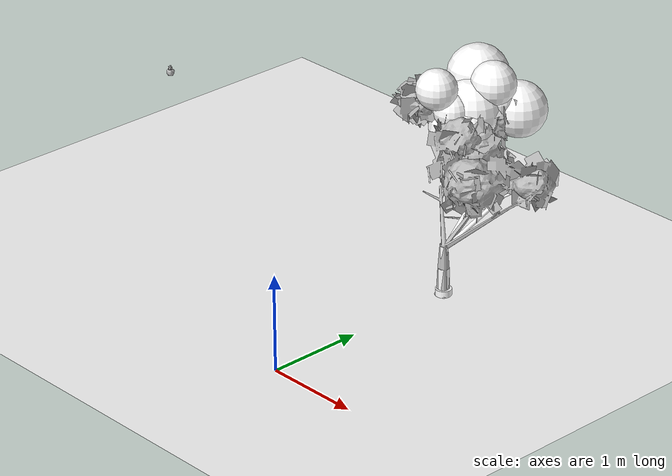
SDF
<sdf version="1.11">
 <world name="peach_orchard">
  <model name="ground">
   <static>true</static>
   <link name="link">
    <visual name="soil">
     <geometry><plane><normal>0 0 1</normal><size>32 22</size></plane></geometry>
     <material>
      <ambient>1 1 1 1</ambient>
      <diffuse>1 1 1 1</diffuse>
      <specular>0.1 0.1 0.1 1</specular>
      <pbr>
       <metal>
        <albedo_map>textures/soil_albedo.png</albedo_map>
        <normal_map type="tangent">textures/soil_normal.png</normal_map>
        <roughness>0.95</roughness>
        <metalness>0</metalness>
       </metal>
      </pbr>
     </material>
    </visual>
    <collision name="c_soil">
     <geometry><plane><normal>0 0 1</normal><size>32 22</size></plane></geometry>
    </collision>
   </link>
  </model>
  <model name="tree_r2_t4">
   <pose>0 2.2 0 0 0 0</pose>
   <static>true</static>
   <link name="link">
    <visual name="tree_mesh">
     <pose>0 0 0 0 0 -0.00886669</pose>
     <geometry>
      <mesh><uri>model://peach_sim/meshes/peach_tree_a.glb</uri><scale>0.955729 0.955729 0.955729</scale></mesh>
     </geometry>
    </visual>
    <visual name="trunk_0">
     <pose>0 0 0.147755 0 0 0</pose>
     <geometry><cylinder><radius>0.0571763</radius><length>0.29551</length></cylinder></geometry>
     <material>
      <ambient>1 1 1 1</ambient>
      <diffuse>1 1 1 1</diffuse>
      <specular>0.1 0.1 0.1 1</specular>
      <pbr>
       <metal>
        <albedo_map>textures/bark_albedo.png</albedo_map>
        <normal_map type="tangent">textures/bark_normal.png</normal_map>
        <roughness>0.9</roughness>
        <metalness>0</metalness>
       </metal>
      </pbr>
     </material>
    </visual>
    <collision name="c_trunk_0">
     <pose>0 0 0.147755 0 0 0</pose>
     <geometry><cylinder><radius>0.0571763</radius><length>0.29551</length></cylinder></geometry>
    </collision>
    <visual name="trunk_1">
     <pose>0 0 0.4164 0 0 0</pose>
     <geometry><cylinder><radius>0.0411669</radius><length>0.241781</length></cylinder></geometry>
     <material>
      <ambient>1 1 1 1</ambient>
      <diffuse>1 1 1 1</diffuse>
      <specular>0.1 0.1 0.1 1</specular>
      <pbr>
       <metal>
        <albedo_map>textures/bark_albedo.png</albedo_map>
        <normal_map type="tangent">textures/bark_normal.png</normal_map>
        <roughness>0.9</roughness>
        <metalness>0</metalness>
       </metal>
      </pbr>
     </material>
    </visual>
    <collision name="c_trunk_1">
     <pose>0 0 0.4164 0 0 0</pose>
     <geometry><cylinder><radius>0.0411669</radius><length>0.241781</length></cylinder></geometry>
    </collision>
    <visual name="root_flare">
     <pose>0 0 0.035 0 0 0</pose>
     <geometry><cylinder><radius>0.0829056</radius><length>0.07</length></cylinder></geometry>
     <material>
      <ambient>1 1 1 1</ambient>
      <diffuse>1 1 1 1</diffuse>
      <specular>0.1 0.1 0.1 1</specular>
      <pbr>
       <metal>
        <albedo_map>textures/bark_albedo.png</albedo_map>
        <normal_map type="tangent">textures/bark_normal.png</normal_map>
        <roughness>0.95</roughness>
        <metalness>0</metalness>
       </metal>
      </pbr>
     </material>
    </visual>
    <visual name="scaffold_0">
     <pose>-0.0409323 0.270379 0.696993 0 0.932957 1.72104</pose>
     <geometry><cylinder><radius>0.022</radius><length>0.680769</length></cylinder></geometry>
     <material>
      <ambient>1 1 1 1</ambient>
      <diffuse>1 1 1 1</diffuse>
      <specular>0.1 0.1 0.1 1</specular>
      <pbr>
       <metal>
        <albedo_map>textures/bark_albedo.png</albedo_map>
        <normal_map type="tangent">textures/bark_normal.png</normal_map>
        <roughness>0.9</roughness>
        <metalness>0</metalness>
       </metal>
      </pbr>
     </material>
    </visual>
    <collision name="c_scaffold_0">
     <pose>-0.0409323 0.270379 0.696993 0 0.932957 1.72104</pose>
     <geometry><cylinder><radius>0.022</radius><length>0.680769</length></cylinder></geometry>
    </collision>
    <visual name="branchlet_0_0">
     <pose>0.0842399 0.278687 0.810711 0 1.04285 -0.271813</pose>
     <geometry><cylinder><radius>0.012</radius><length>0.317258</length></cylinder></geometry>
     <material>
      <ambient>1 1 1 1</ambient>
      <diffuse>1 1 1 1</diffuse>
      <specular>0.1 0.1 0.1 1</specular>
      <pbr>
       <metal>
        <albedo_map>textures/bark_albedo.png</albedo_map>
        <normal_map type="tangent">textures/bark_normal.png</normal_map>
        <roughness>0.9</roughness>
        <metalness>0</metalness>
       </metal>
      </pbr>
     </material>
    </visual>
    <visual name="branchlet_0_1">
     <pose>-0.142574 0.465584 0.87202 0 0.923786 2.41494</pose>
     <geometry><cylinder><radius>0.012</radius><length>0.279364</length></cylinder></geometry>
     <material>
      <ambient>1 1 1 1</ambient>
      <diffuse>1 1 1 1</diffuse>
      <specular>0.1 0.1 0.1 1</specular>
      <pbr>
       <metal>
        <albedo_map>textures/bark_albedo.png</albedo_map>
        <normal_map type="tangent">textures/bark_normal.png</normal_map>
        <roughness>0.9</roughness>
        <metalness>0</metalness>
       </metal>
      </pbr>
     </material>
    </visual>
    <visual name="scaffold_1">
     <pose>0.0922781 0.353488 0.72758 0 1.00253 1.31545</pose>
     <geometry><cylinder><radius>0.022</radius><length>0.866915</length></cylinder></geometry>
     <material>
      <ambient>1 1 1 1</ambient>
      <diffuse>1 1 1 1</diffuse>
      <specular>0.1 0.1 0.1 1</specular>
      <pbr>
       <metal>
        <albedo_map>textures/bark_albedo.png</albedo_map>
        <normal_map type="tangent">textures/bark_normal.png</normal_map>
        <roughness>0.9</roughness>
        <metalness>0</metalness>
       </metal>
      </pbr>
     </material>
    </visual>
    <collision name="c_scaffold_1">
     <pose>0.0922781 0.353488 0.72758 0 1.00253 1.31545</pose>
     <geometry><cylinder><radius>0.022</radius><length>0.866915</length></cylinder></geometry>
    </collision>
    <visual name="branchlet_1_0">
     <pose>0.027938 0.584135 0.823255 0 1.51379 2.36306</pose>
     <geometry><cylinder><radius>0.012</radius><length>0.278696</length></cylinder></geometry>
     <material>
      <ambient>1 1 1 1</ambient>
      <diffuse>1 1 1 1</diffuse>
      <specular>0.1 0.1 0.1 1</specular>
      <pbr>
       <metal>
        <albedo_map>textures/bark_albedo.png</albedo_map>
        <normal_map type="tangent">textures/bark_normal.png</normal_map>
        <roughness>0.9</roughness>
        <metalness>0</metalness>
       </metal>
      </pbr>
     </material>
    </visual>
    <visual name="branchlet_1_1">
     <pose>0.262502 0.699688 0.978035 0 1.04397 0.672142</pose>
     <geometry><cylinder><radius>0.012</radius><length>0.298007</length></cylinder></geometry>
     <material>
      <ambient>1 1 1 1</ambient>
      <diffuse>1 1 1 1</diffuse>
      <specular>0.1 0.1 0.1 1</specular>
      <pbr>
       <metal>
        <albedo_map>textures/bark_albedo.png</albedo_map>
        <normal_map type="tangent">textures/bark_normal.png</normal_map>
        <roughness>0.9</roughness>
        <metalness>0</metalness>
       </metal>
      </pbr>
     </material>
    </visual>
    <visual name="canopy_0">
     <pose>-0.0873016 0.503652 1.64361 0 0 0</pose>
     <geometry><sphere><radius>0.19542</radius></sphere></geometry>
     <material>
      <ambient>1 1 1 1</ambient>
      <diffuse>1 1 1 1</diffuse>
      <specular>0.1 0.1 0.1 1</specular>
      <pbr>
       <metal>
        <albedo_map>textures/leaf_albedo.png</albedo_map>
        <normal_map type="tangent">textures/leaf_normal.png</normal_map>
        <roughness>0.85</roughness>
        <metalness>0</metalness>
       </metal>
      </pbr>
     </material>
    </visual>
    <collision name="c_canopy_0">
     <pose>-0.0873016 0.503652 1.64361 0 0 0</pose>
     <geometry><sphere><radius>0.19542</radius></sphere></geometry>
    </collision>
    <visual name="canopy_1">
     <pose>0.00261764 0.290627 1.63595 0 0 0</pose>
     <geometry><sphere><radius>0.252739</radius></sphere></geometry>
     <material>
      <ambient>1 1 1 1</ambient>
      <diffuse>1 1 1 1</diffuse>
      <specular>0.1 0.1 0.1 1</specular>
      <pbr>
       <metal>
        <albedo_map>textures/leaf_albedo.png</albedo_map>
        <normal_map type="tangent">textures/leaf_normal.png</normal_map>
        <roughness>0.85</roughness>
        <metalness>0</metalness>
       </metal>
      </pbr>
     </material>
    </visual>
    <collision name="c_canopy_1">
     <pose>0.00261764 0.290627 1.63595 0 0 0</pose>
     <geometry><sphere><radius>0.252739</radius></sphere></geometry>
    </collision>
    <visual name="canopy_2">
     <pose>-0.221107 0.0943453 2.09907 0 0 0</pose>
     <geometry><sphere><radius>0.206048</radius></sphere></geometry>
     <material>
      <ambient>1 1 1 1</ambient>
      <diffuse>1 1 1 1</diffuse>
      <specular>0.1 0.1 0.1 1</specular>
      <pbr>
       <metal>
        <albedo_map>textures/leaf_albedo.png</albedo_map>
        <normal_map type="tangent">textures/leaf_normal.png</normal_map>
        <roughness>0.85</roughness>
        <metalness>0</metalness>
       </metal>
      </pbr>
     </material>
    </visual>
    <collision name="c_canopy_2">
     <pose>-0.221107 0.0943453 2.09907 0 0 0</pose>
     <geometry><sphere><radius>0.206048</radius></sphere></geometry>
    </collision>
    <visual name="canopy_3">
     <pose>0.0495356 0.662553 1.91535 0 0 0</pose>
     <geometry><sphere><radius>0.183544</radius></sphere></geometry>
     <material>
      <ambient>1 1 1 1</ambient>
      <diffuse>1 1 1 1</diffuse>
      <specular>0.1 0.1 0.1 1</specular>
      <pbr>
       <metal>
        <albedo_map>textures/leaf_albedo.png</albedo_map>
        <normal_map type="tangent">textures/leaf_normal.png</normal_map>
        <roughness>0.85</roughness>
        <metalness>0</metalness>
       </metal>
      </pbr>
     </material>
    </visual>
    <visual name="canopy_4">
     <pose>-0.191836 0.361563 1.63113 0 0 0</pose>
     <geometry><sphere><radius>0.29218</radius></sphere></geometry>
     <material>
      <ambient>1 1 1 1</ambient>
      <diffuse>1 1 1 1</diffuse>
      <specular>0.1 0.1 0.1 1</specular>
      <pbr>
       <metal>
        <albedo_map>textures/leaf_albedo.png</albedo_map>
        <normal_map type="tangent">textures/leaf_normal.png</normal_map>
        <roughness>0.85</roughness>
        <metalness>0</metalness>
       </metal>
      </pbr>
     </material>
    </visual>
    <visual name="canopy_5">
     <pose>-0.133514 0.218368 1.86133 0 0 0</pose>
     <geometry><sphere><radius>0.182373</radius></sphere></geometry>
     <material>
      <ambient>1 1 1 1</ambient>
      <diffuse>1 1 1 1</diffuse>
      <specular>0.1 0.1 0.1 1</specular>
      <pbr>
       <metal>
        <albedo_map>textures/leaf_albedo.png</albedo_map>
        <normal_map type="tangent">textures/leaf_normal.png</normal_map>
        <roughness>0.85</roughness>
        <metalness>0</metalness>
       </metal>
      </pbr>
     </material>
    </visual>
    <visual name="canopy_6">
     <pose>0.0334277 0.608803 2.08443 0 0 0</pose>
     <geometry><sphere><radius>0.229128</radius></sphere></geometry>
     <material>
      <ambient>1 1 1 1</ambient>
      <diffuse>1 1 1 1</diffuse>
      <specular>0.1 0.1 0.1 1</specular>
      <pbr>
       <metal>
        <albedo_map>textures/leaf_albedo.png</albedo_map>
        <normal_map type="tangent">textures/leaf_normal.png</normal_map>
        <roughness>0.85</roughness>
        <metalness>0</metalness>
       </metal>
      </pbr>
     </material>
    </visual>
    <visual name="canopy_7">
     <pose>-0.103019 0.461283 1.83066 0 0 0</pose>
     <geometry><sphere><radius>0.299314</radius></sphere></geometry>
     <material>
      <ambient>1 1 1 1</ambient>
      <diffuse>1 1 1 1</diffuse>
      <specular>0.1 0.1 0.1 1</specular>
      <pbr>
       <metal>
        <albedo_map>textures/leaf_albedo.png</albedo_map>
        <normal_map type="tangent">textures/leaf_normal.png</normal_map>
        <roughness>0.85</roughness>
        <metalness>0</metalness>
       </metal>
      </pbr>
     </material>
    </visual>
    <visual name="canopy_8">
     <pose>-0.27747 0.712384 2.05028 0 0 0</pose>
     <geometry><sphere><radius>0.310525</radius></sphere></geometry>
     <material>
      <ambient>1 1 1 1</ambient>
      <diffuse>1 1 1 1</diffuse>
      <specular>0.1 0.1 0.1 1</specular>
      <pbr>
       <metal>
        <albedo_map>textures/leaf_albedo.png</albedo_map>
        <normal_map type="tangent">textures/leaf_normal.png</normal_map>
        <roughness>0.85</roughness>
        <metalness>0</metalness>
       </metal>
      </pbr>
     </material>
    </visual>
    <visual name="canopy_9">
     <pose>0.13994 0.858472 1.77577 0 0 0</pose>
     <geometry><sphere><radius>0.284243</radius></sphere></geometry>
     <material>
      <ambient>1 1 1 1</ambient>
      <diffuse>1 1 1 1</diffuse>
      <specular>0.1 0.1 0.1 1</specular>
      <pbr>
       <metal>
        <albedo_map>textures/leaf_albedo.png</albedo_map>
        <normal_map type="tangent">textures/leaf_normal.png</normal_map>
        <roughness>0.85</roughness>
        <metalness>0</metalness>
       </metal>
      </pbr>
     </material>
    </visual>
    <visual name="foliage_0">
     <pose>0.457301 -0.026417 1.3868 0 0 0</pose>
     <geometry><sphere><radius>0.107066</radius></sphere></geometry>
     <material>
      <ambient>1 1 1 1</ambient>
      <diffuse>1 1 1 1</diffuse>
      <specular>0.1 0.1 0.1 1</specular>
      <pbr>
       <metal>
        <albedo_map>textures/leaf_albedo.png</albedo_map>
        <normal_map type="tangent">textures/leaf_normal.png</normal_map>
        <roughness>0.85</roughness>
        <metalness>0</metalness>
       </metal>
      </pbr>
     </material>
    </visual>
    <visual name="foliage_4">
     <pose>0.268251 -0.0963849 1.34175 0 0 0</pose>
     <geometry><sphere><radius>0.0808013</radius></sphere></geometry>
     <material>
      <ambient>1 1 1 1</ambient>
      <diffuse>1 1 1 1</diffuse>
      <specular>0.1 0.1 0.1 1</specular>
      <pbr>
       <metal>
        <albedo_map>textures/leaf_albedo.png</albedo_map>
        <normal_map type="tangent">textures/leaf_normal.png</normal_map>
        <roughness>0.85</roughness>
        <metalness>0</metalness>
       </metal>
      </pbr>
     </material>
    </visual>
    <visual name="twig_0">
     <pose>0.476799 -0.0537153 1.4883 0 0.494472 2.94064</pose>
     <geometry><cylinder><radius>0.007</radius><length>0.168835</length></cylinder></geometry>
     <material>
      <ambient>1 1 1 1</ambient>
      <diffuse>1 1 1 1</diffuse>
      <specular>0.1 0.1 0.1 1</specular>
      <pbr>
       <metal>
        <albedo_map>textures/bark_albedo.png</albedo_map>
        <normal_map type="tangent">textures/bark_normal.png</normal_map>
        <roughness>0.9</roughness>
        <metalness>0</metalness>
       </metal>
      </pbr>
     </material>
    </visual>
    <visual name="twig_1">
     <pose>0.522781 -0.313624 1.51055 0 0.60475 -3.11825</pose>
     <geometry><cylinder><radius>0.007</radius><length>0.113456</length></cylinder></geometry>
     <material>
      <ambient>1 1 1 1</ambient>
      <diffuse>1 1 1 1</diffuse>
      <specular>0.1 0.1 0.1 1</specular>
      <pbr>
       <metal>
        <albedo_map>textures/bark_albedo.png</albedo_map>
        <normal_map type="tangent">textures/bark_normal.png</normal_map>
        <roughness>0.9</roughness>
        <metalness>0</metalness>
       </metal>
      </pbr>
     </material>
    </visual>
    <visual name="twig_2">
     <pose>0.499554 -0.365134 1.56379 0 0.638735 -2.62522</pose>
     <geometry><cylinder><radius>0.007</radius><length>0.194577</length></cylinder></geometry>
     <material>
      <ambient>1 1 1 1</ambient>
      <diffuse>1 1 1 1</diffuse>
      <specular>0.1 0.1 0.1 1</specular>
      <pbr>
       <metal>
        <albedo_map>textures/bark_albedo.png</albedo_map>
        <normal_map type="tangent">textures/bark_normal.png</normal_map>
        <roughness>0.9</roughness>
        <metalness>0</metalness>
       </metal>
      </pbr>
     </material>
    </visual>
    <visual name="twig_3">
     <pose>0.191881 -0.121849 1.51405 0 0.537055 2.71521</pose>
     <geometry><cylinder><radius>0.007</radius><length>0.128808</length></cylinder></geometry>
     <material>
      <ambient>1 1 1 1</ambient>
      <diffuse>1 1 1 1</diffuse>
      <specular>0.1 0.1 0.1 1</specular>
      <pbr>
       <metal>
        <albedo_map>textures/bark_albedo.png</albedo_map>
        <normal_map type="tangent">textures/bark_normal.png</normal_map>
        <roughness>0.9</roughness>
        <metalness>0</metalness>
       </metal>
      </pbr>
     </material>
    </visual>
    <visual name="twig_4">
     <pose>0.192573 -0.0794485 1.55194 0 0.453078 -2.97852</pose>
     <geometry><cylinder><radius>0.007</radius><length>0.182796</length></cylinder></geometry>
     <material>
      <ambient>1 1 1 1</ambient>
      <diffuse>1 1 1 1</diffuse>
      <specular>0.1 0.1 0.1 1</specular>
      <pbr>
       <metal>
        <albedo_map>textures/bark_albedo.png</albedo_map>
        <normal_map type="tangent">textures/bark_normal.png</normal_map>
        <roughness>0.9</roughness>
        <metalness>0</metalness>
       </metal>
      </pbr>
     </material>
    </visual>
    <visual name="twig_5">
     <pose>0.242351 -0.288198 1.51092 0 0.203135 2.28178</pose>
     <geometry><cylinder><radius>0.007</radius><length>0.186783</length></cylinder></geometry>
     <material>
      <ambient>1 1 1 1</ambient>
      <diffuse>1 1 1 1</diffuse>
      <specular>0.1 0.1 0.1 1</specular>
      <pbr>
       <metal>
        <albedo_map>textures/bark_albedo.png</albedo_map>
        <normal_map type="tangent">textures/bark_normal.png</normal_map>
        <roughness>0.9</roughness>
        <metalness>0</metalness>
       </metal>
      </pbr>
     </material>
    </visual>
    <visual name="twig_6">
     <pose>0.174202 -0.385481 1.48912 0 0.44305 2.62042</pose>
     <geometry><cylinder><radius>0.007</radius><length>0.148845</length></cylinder></geometry>
     <material>
      <ambient>1 1 1 1</ambient>
      <diffuse>1 1 1 1</diffuse>
      <specular>0.1 0.1 0.1 1</specular>
      <pbr>
       <metal>
        <albedo_map>textures/bark_albedo.png</albedo_map>
        <normal_map type="tangent">textures/bark_normal.png</normal_map>
        <roughness>0.9</roughness>
        <metalness>0</metalness>
       </metal>
      </pbr>
     </material>
    </visual>
   </link>
  </model>
  <model name="peach_tree_r1_t4_06">
   <pose>-3.45 1.67075 1.38047 0 0.0133368 -2.88213</pose>
   <static>true</static>
   <link name="bag">
    <visual name="bag_mesh">
     <pose>0 0 0.0445914 0 0 -0</pose>
     <geometry>
      <mesh><uri>model://peach_sim/meshes/bagged_peach.glb</uri><scale>0.96015 1.03763 1.01344</scale></mesh>
     </geometry>
    </visual>
    <visual name="body">
     <pose>0 0 0.0265914 0 0 0</pose>
     <geometry><ellipsoid><radii>0.0360056 0.0269783 0.0287187</radii></ellipsoid></geometry>
     <material>
      <ambient>1 1 1 1</ambient>
      <diffuse>1 1 1 1</diffuse>
      <specular>0.1 0.1 0.1 1</specular>
      <pbr>
       <metal>
        <albedo_map>textures/paper_bag_albedo.png</albedo_map>
        <normal_map type="tangent">textures/paper_bag_normal.png</normal_map>
        <roughness>0.72</roughness>
        <metalness>0</metalness>
       </metal>
      </pbr>
     </material>
    </visual>
    <visual name="bottom_fold">
     <pose>0 0 0.012 0 0 0.35</pose>
     <geometry><box><size>0.0558087 0.031025 0.022</size></box></geometry>
     <material>
      <ambient>1 1 1 1</ambient>
      <diffuse>1 1 1 1</diffuse>
      <specular>0.1 0.1 0.1 1</specular>
      <pbr>
       <metal>
        <albedo_map>textures/paper_bag_albedo.png</albedo_map>
        <normal_map type="tangent">textures/paper_bag_normal.png</normal_map>
        <roughness>0.8</roughness>
        <metalness>0</metalness>
       </metal>
      </pbr>
     </material>
    </visual>
    <visual name="fruit">
     <pose>0 0 0.0218724 0 0 0</pose>
     <geometry><sphere><radius>0.0289873</radius></sphere></geometry>
     <material>
      <ambient>1 1 1 1</ambient>
      <diffuse>1 1 1 1</diffuse>
      <specular>0.1 0.1 0.1 1</specular>
      <pbr>
       <metal>
        <albedo_map>textures/fruit_skin_albedo.png</albedo_map>
        <normal_map type="tangent">textures/fruit_skin_normal.png</normal_map>
        <roughness>0.55</roughness>
        <metalness>0</metalness>
       </metal>
      </pbr>
     </material>
    </visual>
    <visual name="neck">
     <pose>0 0 0.0621827 0 0 0</pose>
     <geometry><cylinder><radius>0.013</radius><length>0.018</length></cylinder></geometry>
     <material>
      <ambient>1 1 1 1</ambient>
      <diffuse>1 1 1 1</diffuse>
      <specular>0.1 0.1 0.1 1</specular>
      <pbr>
       <metal>
        <albedo_map>textures/paper_bag_albedo.png</albedo_map>
        <normal_map type="tangent">textures/paper_bag_normal.png</normal_map>
        <roughness>0.75</roughness>
        <metalness>0</metalness>
       </metal>
      </pbr>
     </material>
    </visual>
    <visual name="gather">
     <pose>0 0 0.0431827 0 0 0</pose>
     <geometry><cylinder><radius>0.019</radius><length>0.02</length></cylinder></geometry>
     <material>
      <ambient>1 1 1 1</ambient>
      <diffuse>1 1 1 1</diffuse>
      <specular>0.1 0.1 0.1 1</specular>
      <pbr>
       <metal>
        <albedo_map>textures/paper_bag_albedo.png</albedo_map>
        <normal_map type="tangent">textures/paper_bag_normal.png</normal_map>
        <roughness>0.8</roughness>
        <metalness>0</metalness>
       </metal>
      </pbr>
     </material>
    </visual>
    <visual name="inner_paper">
     <pose>0 0 0.0671827 0 0 0</pose>
     <geometry><cylinder><radius>0.01</radius><length>0.008</length></cylinder></geometry>
     <material>
      <ambient>0.180392 0.14902 0.133333 1</ambient>
      <diffuse>0.180392 0.14902 0.133333 1</diffuse>
      <specular>0.1 0.1 0.1 1</specular>
     </material>
    </visual>
    <visual name="wire_0">
     <pose>0 0 0.0571827 0 0 0</pose>
     <geometry><cylinder><radius>0.0205</radius><length>0.0035</length></cylinder></geometry>
     <material>
      <ambient>0.25 0.25 0.25 1</ambient>
      <diffuse>0.25 0.25 0.25 1</diffuse>
      <specular>0.1 0.1 0.1 1</specular>
     </material>
    </visual>
    <visual name="wire_1">
     <pose>0 0 0.0641827 0 0 0</pose>
     <geometry><cylinder><radius>0.0205</radius><length>0.0035</length></cylinder></geometry>
     <material>
      <ambient>0.25 0.25 0.25 1</ambient>
      <diffuse>0.25 0.25 0.25 1</diffuse>
      <specular>0.1 0.1 0.1 1</specular>
     </material>
    </visual>
    <visual name="wire_tail">
     <pose>0.01 0 0.0651827 0 0.521618 0</pose>
     <geometry><cylinder><radius>0.0012</radius><length>0.026</length></cylinder></geometry>
     <material>
      <ambient>0.25 0.25 0.25 1</ambient>
      <diffuse>0.25 0.25 0.25 1</diffuse>
      <specular>0.1 0.1 0.1 1</specular>
     </material>
    </visual>
    <collision name="c_body">
     <pose>0 0 0.0265914 0 0 0</pose>
     <geometry><cylinder><radius>0.0360056</radius><length>0.0531827</length></cylinder></geometry>
    </collision>
   </link>
  </model>
 </world>
</sdf>
